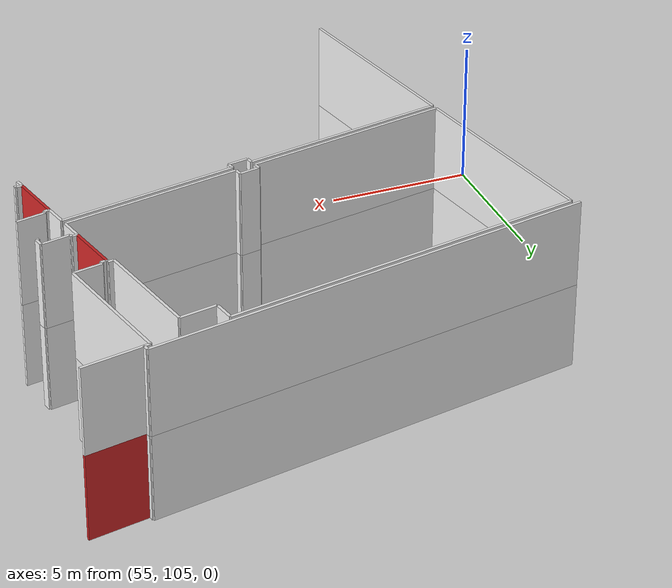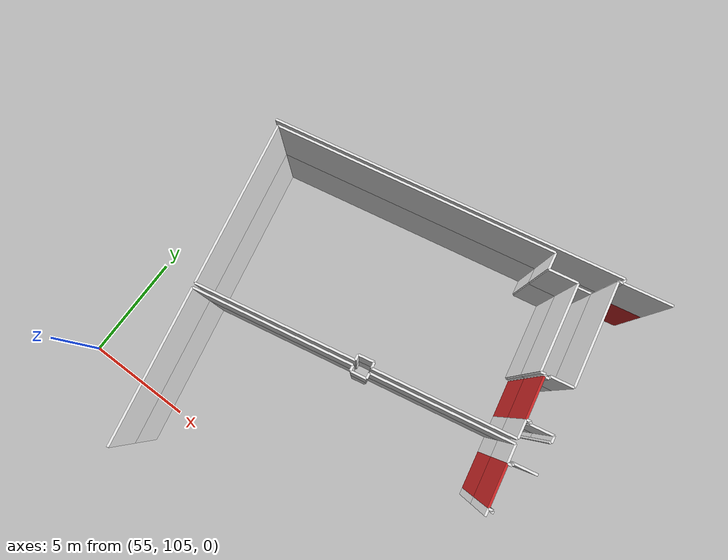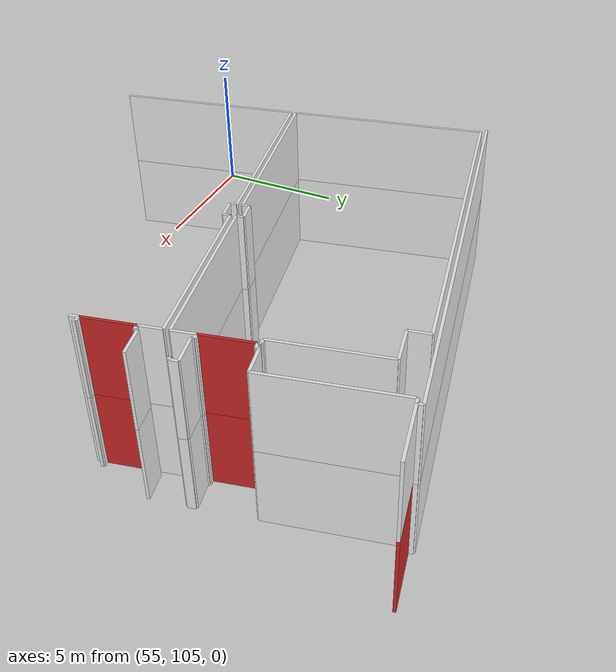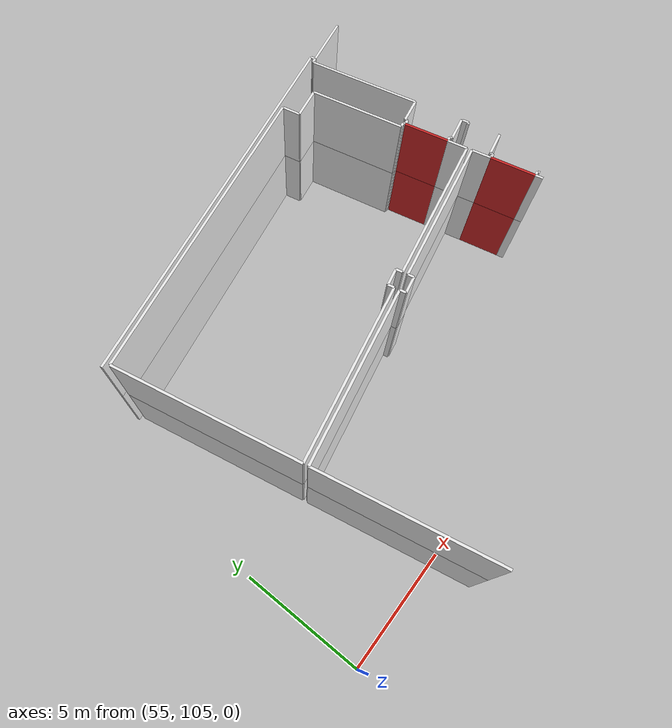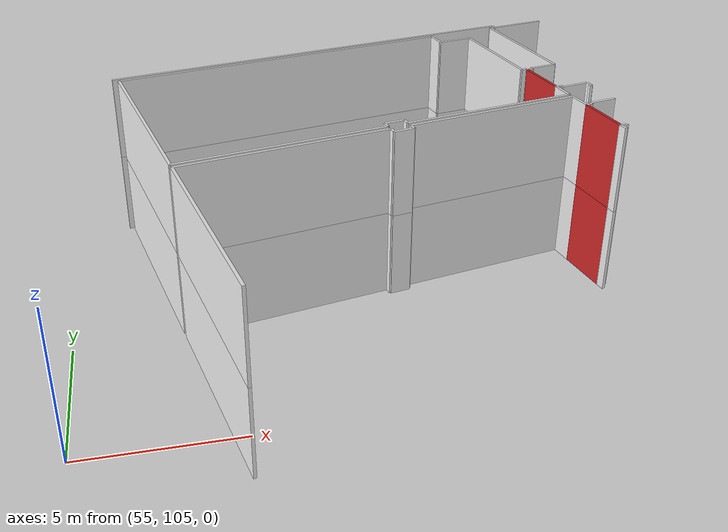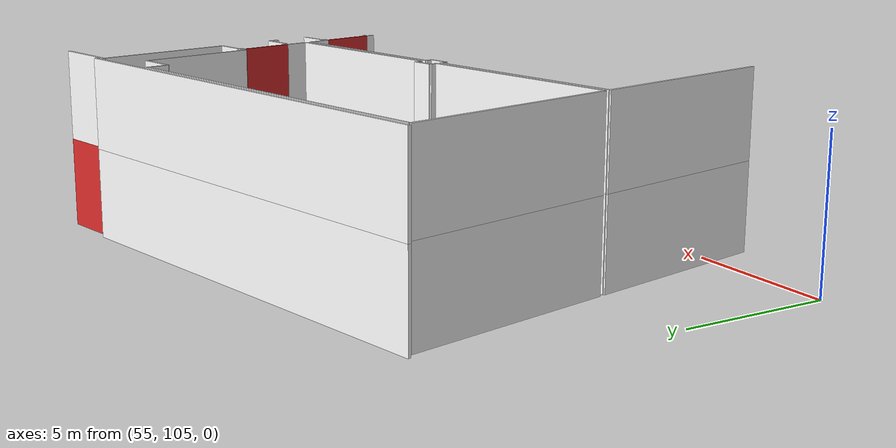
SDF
<sdf version="1.6">
 <world name="default">
  <model name="wall_71.7_114.6_1.5">
   <static>true</static>
   <pose>71.72999999998137 114.55000000004657 1.5 0 0 -1.3690339825092397</pose>
   <link name="link">
    <visual name="visual">
     <geometry><box><size>1.796440926065282 0.1 3</size></box></geometry>
     <material>
      <script><uri>file://media/materials/scripts/gazebo.material</uri><name>Gazebo/Red</name></script>
     </material>
    </visual>
    <collision name="collision"><geometry><box><size>1.796440926065282 0.1 3</size></box></geometry></collision>
   </link>
  </model>
  <model name="wall_72.4_111.0_1.5">
   <static>true</static>
   <pose>72.43499999999767 111.04000000003725 1.5 0 0 -1.3744936626731843</pose>
   <link name="link">
    <visual name="visual">
     <geometry><box><size>1.7944637079631676 0.1 3</size></box></geometry>
     <material>
      <script><uri>file://media/materials/scripts/gazebo.material</uri><name>Gazebo/Red</name></script>
     </material>
    </visual>
    <collision name="collision"><geometry><box><size>1.7944637079631676 0.1 3</size></box></geometry></collision>
   </link>
  </model>
  <model name="wall_73.0_120.5_1.5">
   <static>true</static>
   <pose>73.04000000000815 120.50499999988824 1.5 0 0 0.19646185337495456</pose>
   <link name="link">
    <visual name="visual">
     <geometry><box><size>2.100404722931416 0.1 3</size></box></geometry>
     <material>
      <script><uri>file://media/materials/scripts/gazebo.material</uri><name>Gazebo/Red</name></script>
     </material>
    </visual>
    <collision name="collision"><geometry><box><size>2.100404722931416 0.1 3</size></box></geometry></collision>
   </link>
  </model>
  <model name="wall_71.7_114.6_4.5">
   <static>true</static>
   <pose>71.72999999998137 114.55000000004657 4.5 0 0 -1.3690339825092397</pose>
   <link name="link">
    <visual name="visual">
     <geometry><box><size>1.796440926065282 0.1 3</size></box></geometry>
     <material>
      <script><uri>file://media/materials/scripts/gazebo.material</uri><name>Gazebo/Red</name></script>
     </material>
    </visual>
    <collision name="collision"><geometry><box><size>1.796440926065282 0.1 3</size></box></geometry></collision>
   </link>
  </model>
  <model name="wall_72.4_111.0_4.5">
   <static>true</static>
   <pose>72.43499999999767 111.04000000003725 4.5 0 0 -1.3744936626731843</pose>
   <link name="link">
    <visual name="visual">
     <geometry><box><size>1.7944637079631676 0.1 3</size></box></geometry>
     <material>
      <script><uri>file://media/materials/scripts/gazebo.material</uri><name>Gazebo/Red</name></script>
     </material>
    </visual>
    <collision name="collision"><geometry><box><size>1.7944637079631676 0.1 3</size></box></geometry></collision>
   </link>
  </model>
  <model name="wall_71.5_115.5_1.5">
   <static>true</static>
   <pose>71.5449999999837 115.47999999998137 1.5 0 0 1.6704649797471094</pose>
   <link name="link">
    <visual name="visual">
     <geometry><box><size>0.10049875584145537 0.1 3</size></box></geometry>
     <material>
      <script><uri>file://media/materials/scripts/gazebo.material</uri><name>Gazebo/White</name></script>
     </material>
    </visual>
    <collision name="collision"><geometry><box><size>0.10049875584145537 0.1 3</size></box></geometry></collision>
   </link>
  </model>
  <model name="wall_71.4_115.5_1.5">
   <static>true</static>
   <pose>71.44000000000233 115.51000000000931 1.5 0 0 -2.944197095754793</pose>
   <link name="link">
    <visual name="visual">
     <geometry><box><size>0.20396078041403173 0.1 3</size></box></geometry>
     <material>
      <script><uri>file://media/materials/scripts/gazebo.material</uri><name>Gazebo/White</name></script>
     </material>
    </visual>
    <collision name="collision"><geometry><box><size>0.20396078041403173 0.1 3</size></box></geometry></collision>
   </link>
  </model>
  <model name="wall_71.0_117.4_1.5">
   <static>true</static>
   <pose>70.96500000002561 117.37000000011176 1.5 0 0 1.7676803777493852</pose>
   <link name="link">
    <visual name="visual">
     <geometry><box><size>3.834070943308059 0.1 3</size></box></geometry>
     <material>
      <script><uri>file://media/materials/scripts/gazebo.material</uri><name>Gazebo/White</name></script>
     </material>
    </visual>
    <collision name="collision"><geometry><box><size>3.834070943308059 0.1 3</size></box></geometry></collision>
   </link>
  </model>
  <model name="wall_70.0_119.1_1.5">
   <static>true</static>
   <pose>69.96500000002561 119.12999999988824 1.5 0 0 -2.9519011013949563</pose>
   <link name="link">
    <visual name="visual">
     <geometry><box><size>1.2728314892817856 0.1 3</size></box></geometry>
     <material>
      <script><uri>file://media/materials/scripts/gazebo.material</uri><name>Gazebo/White</name></script>
     </material>
    </visual>
    <collision name="collision"><geometry><box><size>1.2728314892817856 0.1 3</size></box></geometry></collision>
   </link>
  </model>
  <model name="wall_69.3_119.4_1.5">
   <static>true</static>
   <pose>69.27000000001863 119.375 1.5 0 0 1.760276484581226</pose>
   <link name="link">
    <visual name="visual">
     <geometry><box><size>0.7433034378075905 0.1 3</size></box></geometry>
     <material>
      <script><uri>file://media/materials/scripts/gazebo.material</uri><name>Gazebo/White</name></script>
     </material>
    </visual>
    <collision name="collision"><geometry><box><size>0.7433034378075905 0.1 3</size></box></geometry></collision>
   </link>
  </model>
  <model name="wall_63.1_118.5_1.5">
   <static>true</static>
   <pose>63.14500000001863 118.54500000015832 1.5 0 0 -2.9467391918441352</pose>
   <link name="link">
    <visual name="visual">
     <geometry><box><size>12.343589429346915 0.1 3</size></box></geometry>
     <material>
      <script><uri>file://media/materials/scripts/gazebo.material</uri><name>Gazebo/White</name></script>
     </material>
    </visual>
    <collision name="collision"><geometry><box><size>12.343589429346915 0.1 3</size></box></geometry></collision>
   </link>
  </model>
  <model name="wall_57.8_113.8_1.5">
   <static>true</static>
   <pose>57.80000000001746 113.78500000014901 1.5 0 0 -1.3742100465085676</pose>
   <link name="link">
    <visual name="visual">
     <geometry><box><size>7.270027510151529 0.1 3</size></box></geometry>
     <material>
      <script><uri>file://media/materials/scripts/gazebo.material</uri><name>Gazebo/White</name></script>
     </material>
    </visual>
    <collision name="collision"><geometry><box><size>7.270027510151529 0.1 3</size></box></geometry></collision>
   </link>
  </model>
  <model name="wall_61.9_110.9_1.5">
   <static>true</static>
   <pose>61.945000000006985 110.9000000001397 1.5 0 0 0.1954353271142626</pose>
   <link name="link">
    <visual name="visual">
     <geometry><box><size>7.0033206409232305 0.1 3</size></box></geometry>
     <material>
      <script><uri>file://media/materials/scripts/gazebo.material</uri><name>Gazebo/White</name></script>
     </material>
    </visual>
    <collision name="collision"><geometry><box><size>7.0033206409232305 0.1 3</size></box></geometry></collision>
   </link>
  </model>
  <model name="wall_65.4_111.7_1.5">
   <static>true</static>
   <pose>65.35500000001048 111.69999999995343 1.5 0 0 1.7761917161396261</pose>
   <link name="link">
    <visual name="visual">
     <geometry><box><size>0.24515301320319682 0.1 3</size></box></geometry>
     <material>
      <script><uri>file://media/materials/scripts/gazebo.material</uri><name>Gazebo/White</name></script>
     </material>
    </visual>
    <collision name="collision"><geometry><box><size>0.24515301320319682 0.1 3</size></box></geometry></collision>
   </link>
  </model>
  <model name="wall_65.7_111.9_1.5">
   <static>true</static>
   <pose>65.6700000000128 111.88999999989755 1.5 0 0 0.20304521743943982</pose>
   <link name="link">
    <visual name="visual">
     <geometry><box><size>0.6942621983278424 0.1 3</size></box></geometry>
     <material>
      <script><uri>file://media/materials/scripts/gazebo.material</uri><name>Gazebo/White</name></script>
     </material>
    </visual>
    <collision name="collision"><geometry><box><size>0.6942621983278424 0.1 3</size></box></geometry></collision>
   </link>
  </model>
  <model name="wall_66.0_111.8_1.5">
   <static>true</static>
   <pose>66.03500000000349 111.83499999996275 1.5 0 0 -1.373400766989791</pose>
   <link name="link">
    <visual name="visual">
     <geometry><box><size>0.25495097567735614 0.1 3</size></box></geometry>
     <material>
      <script><uri>file://media/materials/scripts/gazebo.material</uri><name>Gazebo/White</name></script>
     </material>
    </visual>
    <collision name="collision"><geometry><box><size>0.25495097567735614 0.1 3</size></box></geometry></collision>
   </link>
  </model>
  <model name="wall_69.1_112.3_1.5">
   <static>true</static>
   <pose>69.05999999999767 112.30000000004657 1.5 0 0 0.19418838678074232</pose>
   <link name="link">
    <visual name="visual">
     <geometry><box><size>6.1149325425875 0.1 3</size></box></geometry>
     <material>
      <script><uri>file://media/materials/scripts/gazebo.material</uri><name>Gazebo/White</name></script>
     </material>
    </visual>
    <collision name="collision"><geometry><box><size>6.1149325425875 0.1 3</size></box></geometry></collision>
   </link>
  </model>
  <model name="wall_72.0_113.3_1.5">
   <static>true</static>
   <pose>71.98499999998603 113.28000000002794 1.5 0 0 1.760784614791112</pose>
   <link name="link">
    <visual name="visual">
     <geometry><box><size>0.7942921374956162 0.1 3</size></box></geometry>
     <material>
      <script><uri>file://media/materials/scripts/gazebo.material</uri><name>Gazebo/White</name></script>
     </material>
    </visual>
    <collision name="collision"><geometry><box><size>0.7942921374956162 0.1 3</size></box></geometry></collision>
   </link>
  </model>
  <model name="wall_72.2_112.3_1.5">
   <static>true</static>
   <pose>72.17999999999302 112.30499999993481 1.5 0 0 1.7756730438677673</pose>
   <link name="link">
    <visual name="visual">
     <geometry><box><size>0.786447709666139 0.1 3</size></box></geometry>
     <material>
      <script><uri>file://media/materials/scripts/gazebo.material</uri><name>Gazebo/White</name></script>
     </material>
    </visual>
    <collision name="collision"><geometry><box><size>0.786447709666139 0.1 3</size></box></geometry></collision>
   </link>
  </model>
  <model name="wall_69.1_112.1_1.5">
   <static>true</static>
   <pose>69.09999999997672 112.0999999998603 1.5 0 0 -2.947404266809051</pose>
   <link name="link">
    <visual name="visual">
     <geometry><box><size>6.1149325425875 0.1 3</size></box></geometry>
     <material>
      <script><uri>file://media/materials/scripts/gazebo.material</uri><name>Gazebo/White</name></script>
     </material>
    </visual>
    <collision name="collision"><geometry><box><size>6.1149325425875 0.1 3</size></box></geometry></collision>
   </link>
  </model>
  <model name="wall_66.1_111.4_1.5">
   <static>true</static>
   <pose>66.125 111.38999999989755 1.5 0 0 -1.3654009372177238</pose>
   <link name="link">
    <visual name="visual">
     <geometry><box><size>0.24515301321506852 0.1 3</size></box></geometry>
     <material>
      <script><uri>file://media/materials/scripts/gazebo.material</uri><name>Gazebo/White</name></script>
     </material>
    </visual>
    <collision name="collision"><geometry><box><size>0.24515301321506852 0.1 3</size></box></geometry></collision>
   </link>
  </model>
  <model name="wall_65.8_111.2_1.5">
   <static>true</static>
   <pose>65.80999999999767 111.2050000000745 1.5 0 0 -2.9526954728846198</pose>
   <link name="link">
    <visual name="visual">
     <geometry><box><size>0.6923149572561651 0.1 3</size></box></geometry>
     <material>
      <script><uri>file://media/materials/scripts/gazebo.material</uri><name>Gazebo/White</name></script>
     </material>
    </visual>
    <collision name="collision"><geometry><box><size>0.6923149572561651 0.1 3</size></box></geometry></collision>
   </link>
  </model>
  <model name="wall_65.4_111.3_1.5">
   <static>true</static>
   <pose>65.44499999997788 111.26000000000931 1.5 0 0 1.7761917161396261</pose>
   <link name="link">
    <visual name="visual">
     <geometry><box><size>0.24515301320319682 0.1 3</size></box></geometry>
     <material>
      <script><uri>file://media/materials/scripts/gazebo.material</uri><name>Gazebo/White</name></script>
     </material>
    </visual>
    <collision name="collision"><geometry><box><size>0.24515301320319682 0.1 3</size></box></geometry></collision>
   </link>
  </model>
  <model name="wall_62.0_110.7_1.5">
   <static>true</static>
   <pose>61.98499999998603 110.70499999984168 1.5 0 0 -2.9475584256050955</pose>
   <link name="link">
    <visual name="visual">
     <geometry><box><size>7.001385577168813 0.1 3</size></box></geometry>
     <material>
      <script><uri>file://media/materials/scripts/gazebo.material</uri><name>Gazebo/White</name></script>
     </material>
    </visual>
    <collision name="collision"><geometry><box><size>7.001385577168813 0.1 3</size></box></geometry></collision>
   </link>
  </model>
  <model name="wall_59.2_106.7_1.5">
   <static>true</static>
   <pose>59.20999999999185 106.70499999984168 1.5 0 0 -1.3748471066906804</pose>
   <link name="link">
    <visual name="visual">
     <geometry><box><size>6.779741882902312 0.1 3</size></box></geometry>
     <material>
      <script><uri>file://media/materials/scripts/gazebo.material</uri><name>Gazebo/White</name></script>
     </material>
    </visual>
    <collision name="collision"><geometry><box><size>6.779741882902312 0.1 3</size></box></geometry></collision>
   </link>
  </model>
  <model name="wall_72.6_110.0_1.5">
   <static>true</static>
   <pose>72.63999999998487 110.01000000000931 1.5 0 0 1.7681918864582145</pose>
   <link name="link">
    <visual name="visual">
     <geometry><box><size>0.30594117108908153 0.1 3</size></box></geometry>
     <material>
      <script><uri>file://media/materials/scripts/gazebo.material</uri><name>Gazebo/White</name></script>
     </material>
    </visual>
    <collision name="collision"><geometry><box><size>0.30594117108908153 0.1 3</size></box></geometry></collision>
   </link>
  </model>
  <model name="wall_72.8_110.1_1.5">
   <static>true</static>
   <pose>72.80999999999767 110.13999999989755 1.5 0 0 1.7681918866447774</pose>
   <link name="link">
    <visual name="visual">
     <geometry><box><size>0.10198039036683233 0.1 3</size></box></geometry>
     <material>
      <script><uri>file://media/materials/scripts/gazebo.material</uri><name>Gazebo/White</name></script>
     </material>
    </visual>
    <collision name="collision"><geometry><box><size>0.10198039036683233 0.1 3</size></box></geometry></collision>
   </link>
  </model>
  <model name="wall_72.7_110.2_1.5">
   <static>true</static>
   <pose>72.7049999999872 110.17500000004657 1.5 0 0 -2.9849907776618085</pose>
   <link name="link">
    <visual name="visual">
     <geometry><box><size>0.19235384058705793 0.1 3</size></box></geometry>
     <material>
      <script><uri>file://media/materials/scripts/gazebo.material</uri><name>Gazebo/White</name></script>
     </material>
    </visual>
    <collision name="collision"><geometry><box><size>0.19235384058705793 0.1 3</size></box></geometry></collision>
   </link>
  </model>
  <model name="wall_72.4_111.9_1.5">
   <static>true</static>
   <pose>72.35500000001048 111.93500000005588 1.5 0 0 0.15660187831921837</pose>
   <link name="link">
    <visual name="visual">
     <geometry><box><size>0.19235384065968367 0.1 3</size></box></geometry>
     <material>
      <script><uri>file://media/materials/scripts/gazebo.material</uri><name>Gazebo/White</name></script>
     </material>
    </visual>
    <collision name="collision"><geometry><box><size>0.19235384065968367 0.1 3</size></box></geometry></collision>
   </link>
  </model>
  <model name="wall_72.4_112.0_1.5">
   <static>true</static>
   <pose>72.44000000000233 112.0 1.5 0 0 1.7681918875402798</pose>
   <link name="link">
    <visual name="visual">
     <geometry><box><size>0.10198038991021388 0.1 3</size></box></geometry>
     <material>
      <script><uri>file://media/materials/scripts/gazebo.material</uri><name>Gazebo/White</name></script>
     </material>
    </visual>
    <collision name="collision"><geometry><box><size>0.10198038991021388 0.1 3</size></box></geometry></collision>
   </link>
  </model>
  <model name="wall_72.9_112.1_1.5">
   <static>true</static>
   <pose>72.9199999999837 112.14999999990687 1.5 0 0 0.2013171085608308</pose>
   <link name="link">
    <visual name="visual">
     <geometry><box><size>1.0001999800229942 0.1 3</size></box></geometry>
     <material>
      <script><uri>file://media/materials/scripts/gazebo.material</uri><name>Gazebo/White</name></script>
     </material>
    </visual>
    <collision name="collision"><geometry><box><size>1.0001999800229942 0.1 3</size></box></geometry></collision>
   </link>
  </model>
  <model name="wall_73.1_113.5_1.5">
   <static>true</static>
   <pose>73.10999999998603 113.51000000000931 1.5 0 0 0.1973955600737564</pose>
   <link name="link">
    <visual name="visual">
     <geometry><box><size>0.10198039025267772 0.1 3</size></box></geometry>
     <material>
      <script><uri>file://media/materials/scripts/gazebo.material</uri><name>Gazebo/White</name></script>
     </material>
    </visual>
    <collision name="collision"><geometry><box><size>0.10198039025267772 0.1 3</size></box></geometry></collision>
   </link>
  </model>
  <model name="wall_73.1_113.7_1.5">
   <static>true</static>
   <pose>73.12999999997555 113.66500000003725 1.5 0 0 1.7748143063542596</pose>
   <link name="link">
    <visual name="visual">
     <geometry><box><size>0.2961418579352255 0.1 3</size></box></geometry>
     <material>
      <script><uri>file://media/materials/scripts/gazebo.material</uri><name>Gazebo/White</name></script>
     </material>
    </visual>
    <collision name="collision"><geometry><box><size>0.2961418579352255 0.1 3</size></box></geometry></collision>
   </link>
  </model>
  <model name="wall_72.6_113.7_1.5">
   <static>true</static>
   <pose>72.60999999998603 113.70999999996275 1.5 0 0 -2.9402755450289626</pose>
   <link name="link">
    <visual name="visual">
     <geometry><box><size>1.0001999800229942 0.1 3</size></box></geometry>
     <material>
      <script><uri>file://media/materials/scripts/gazebo.material</uri><name>Gazebo/White</name></script>
     </material>
    </visual>
    <collision name="collision"><geometry><box><size>1.0001999800229942 0.1 3</size></box></geometry></collision>
   </link>
  </model>
  <model name="wall_72.1_113.7_1.5">
   <static>true</static>
   <pose>72.10999999998603 113.65999999991618 1.5 0 0 1.7681918866447774</pose>
   <link name="link">
    <visual name="visual">
     <geometry><box><size>0.10198039036683233 0.1 3</size></box></geometry>
     <material>
      <script><uri>file://media/materials/scripts/gazebo.material</uri><name>Gazebo/White</name></script>
     </material>
    </visual>
    <collision name="collision"><geometry><box><size>0.10198039036683233 0.1 3</size></box></geometry></collision>
   </link>
  </model>
  <model name="wall_72.0_113.7_1.5">
   <static>true</static>
   <pose>72.00499999997555 113.68999999994412 1.5 0 0 -2.9340964269693144</pose>
   <link name="link">
    <visual name="visual">
     <geometry><box><size>0.19416487839942884 0.1 3</size></box></geometry>
     <material>
      <script><uri>file://media/materials/scripts/gazebo.material</uri><name>Gazebo/White</name></script>
     </material>
    </visual>
    <collision name="collision"><geometry><box><size>0.19416487839942884 0.1 3</size></box></geometry></collision>
   </link>
  </model>
  <model name="wall_71.6_115.5_1.5">
   <static>true</static>
   <pose>71.64999999999418 115.45000000018626 1.5 0 0 0.19739556001778746</pose>
   <link name="link">
    <visual name="visual">
     <geometry><box><size>0.20396078056243275 0.1 3</size></box></geometry>
     <material>
      <script><uri>file://media/materials/scripts/gazebo.material</uri><name>Gazebo/White</name></script>
     </material>
    </visual>
    <collision name="collision"><geometry><box><size>0.20396078056243275 0.1 3</size></box></geometry></collision>
   </link>
  </model>
  <model name="wall_71.7_115.5_1.5">
   <static>true</static>
   <pose>71.73999999999069 115.52000000001863 1.5 0 0 1.7681918875402798</pose>
   <link name="link">
    <visual name="visual">
     <geometry><box><size>0.10198038991021388 0.1 3</size></box></geometry>
     <material>
      <script><uri>file://media/materials/scripts/gazebo.material</uri><name>Gazebo/White</name></script>
     </material>
    </visual>
    <collision name="collision"><geometry><box><size>0.10198038991021388 0.1 3</size></box></geometry></collision>
   </link>
  </model>
  <model name="wall_72.2_115.7_1.5">
   <static>true</static>
   <pose>72.22000000000116 115.66499999980442 1.5 0 0 0.19150171840711785</pose>
   <link name="link">
    <visual name="visual">
     <geometry><box><size>0.9982484660926583 0.1 3</size></box></geometry>
     <material>
      <script><uri>file://media/materials/scripts/gazebo.material</uri><name>Gazebo/White</name></script>
     </material>
    </visual>
    <collision name="collision"><geometry><box><size>0.9982484660926583 0.1 3</size></box></geometry></collision>
   </link>
  </model>
  <model name="wall_72.3_118.0_1.5">
   <static>true</static>
   <pose>72.26500000001397 117.98999999999069 1.5 0 0 1.7677606663024836</pose>
   <link name="link">
    <visual name="visual">
     <geometry><box><size>4.547933597123673 0.1 3</size></box></geometry>
     <material>
      <script><uri>file://media/materials/scripts/gazebo.material</uri><name>Gazebo/White</name></script>
     </material>
    </visual>
    <collision name="collision"><geometry><box><size>4.547933597123673 0.1 3</size></box></geometry></collision>
   </link>
  </model>
  <model name="wall_71.8_120.2_1.5">
   <static>true</static>
   <pose>71.81500000000233 120.23999999999069 1.5 0 0 1.8157749926609448</pose>
   <link name="link">
    <visual name="visual">
     <geometry><box><size>0.041231055842818214 0.1 3</size></box></geometry>
     <material>
      <script><uri>file://media/materials/scripts/gazebo.material</uri><name>Gazebo/White</name></script>
     </material>
    </visual>
    <collision name="collision">
     <geometry><box><size>0.041231055842818214 0.1 3</size></box></geometry>
    </collision>
   </link>
  </model>
  <model name="wall_71.9_120.3_1.5">
   <static>true</static>
   <pose>71.91000000000349 120.27999999979511 1.5 0 0 0.19739556001778746</pose>
   <link name="link">
    <visual name="visual">
     <geometry><box><size>0.20396078056243275 0.1 3</size></box></geometry>
     <material>
      <script><uri>file://media/materials/scripts/gazebo.material</uri><name>Gazebo/White</name></script>
     </material>
    </visual>
    <collision name="collision"><geometry><box><size>0.20396078056243275 0.1 3</size></box></geometry></collision>
   </link>
  </model>
  <model name="wall_72.0_120.4_1.5">
   <static>true</static>
   <pose>71.99499999999534 120.39500000001863 1.5 0 0 1.7273982035881303</pose>
   <link name="link">
    <visual name="visual">
     <geometry><box><size>0.1923538410258384 0.1 3</size></box></geometry>
     <material>
      <script><uri>file://media/materials/scripts/gazebo.material</uri><name>Gazebo/White</name></script>
     </material>
    </visual>
    <collision name="collision"><geometry><box><size>0.1923538410258384 0.1 3</size></box></geometry></collision>
   </link>
  </model>
  <model name="wall_64.4_119.0_1.5">
   <static>true</static>
   <pose>64.41499999997905 119.0 1.5 0 0 -2.947122177573041</pose>
   <link name="link">
    <visual name="visual">
     <geometry><box><size>15.42067767650972 0.1 3</size></box></geometry>
     <material>
      <script><uri>file://media/materials/scripts/gazebo.material</uri><name>Gazebo/White</name></script>
     </material>
    </visual>
    <collision name="collision"><geometry><box><size>15.42067767650972 0.1 3</size></box></geometry></collision>
   </link>
  </model>
  <model name="wall_64.6_118.8_1.5">
   <static>true</static>
   <pose>64.55000000001746 118.82499999995343 1.5 0 0 0.19520342923642736</pose>
   <link name="link">
    <visual name="visual">
     <geometry><box><size>15.208842822445934 0.1 3</size></box></geometry>
     <material>
      <script><uri>file://media/materials/scripts/gazebo.material</uri><name>Gazebo/White</name></script>
     </material>
    </visual>
    <collision name="collision"><geometry><box><size>15.208842822445934 0.1 3</size></box></geometry></collision>
   </link>
  </model>
  <model name="wall_71.5_115.5_4.5">
   <static>true</static>
   <pose>71.5449999999837 115.47999999998137 4.5 0 0 1.6704649797471094</pose>
   <link name="link">
    <visual name="visual">
     <geometry><box><size>0.10049875584145537 0.1 3</size></box></geometry>
     <material>
      <script><uri>file://media/materials/scripts/gazebo.material</uri><name>Gazebo/White</name></script>
     </material>
    </visual>
    <collision name="collision"><geometry><box><size>0.10049875584145537 0.1 3</size></box></geometry></collision>
   </link>
  </model>
  <model name="wall_71.4_115.5_4.5">
   <static>true</static>
   <pose>71.44000000000233 115.51000000000931 4.5 0 0 -2.944197095754793</pose>
   <link name="link">
    <visual name="visual">
     <geometry><box><size>0.20396078041403173 0.1 3</size></box></geometry>
     <material>
      <script><uri>file://media/materials/scripts/gazebo.material</uri><name>Gazebo/White</name></script>
     </material>
    </visual>
    <collision name="collision"><geometry><box><size>0.20396078041403173 0.1 3</size></box></geometry></collision>
   </link>
  </model>
  <model name="wall_71.0_117.4_4.5">
   <static>true</static>
   <pose>70.96500000002561 117.37000000011176 4.5 0 0 1.7676803777493852</pose>
   <link name="link">
    <visual name="visual">
     <geometry><box><size>3.834070943308059 0.1 3</size></box></geometry>
     <material>
      <script><uri>file://media/materials/scripts/gazebo.material</uri><name>Gazebo/White</name></script>
     </material>
    </visual>
    <collision name="collision"><geometry><box><size>3.834070943308059 0.1 3</size></box></geometry></collision>
   </link>
  </model>
  <model name="wall_70.0_119.1_4.5">
   <static>true</static>
   <pose>69.96500000002561 119.12999999988824 4.5 0 0 -2.9519011013949563</pose>
   <link name="link">
    <visual name="visual">
     <geometry><box><size>1.2728314892817856 0.1 3</size></box></geometry>
     <material>
      <script><uri>file://media/materials/scripts/gazebo.material</uri><name>Gazebo/White</name></script>
     </material>
    </visual>
    <collision name="collision"><geometry><box><size>1.2728314892817856 0.1 3</size></box></geometry></collision>
   </link>
  </model>
  <model name="wall_69.3_119.4_4.5">
   <static>true</static>
   <pose>69.27000000001863 119.375 4.5 0 0 1.760276484581226</pose>
   <link name="link">
    <visual name="visual">
     <geometry><box><size>0.7433034378075905 0.1 3</size></box></geometry>
     <material>
      <script><uri>file://media/materials/scripts/gazebo.material</uri><name>Gazebo/White</name></script>
     </material>
    </visual>
    <collision name="collision"><geometry><box><size>0.7433034378075905 0.1 3</size></box></geometry></collision>
   </link>
  </model>
  <model name="wall_63.1_118.5_4.5">
   <static>true</static>
   <pose>63.14500000001863 118.54500000015832 4.5 0 0 -2.9467391918441352</pose>
   <link name="link">
    <visual name="visual">
     <geometry><box><size>12.343589429346915 0.1 3</size></box></geometry>
     <material>
      <script><uri>file://media/materials/scripts/gazebo.material</uri><name>Gazebo/White</name></script>
     </material>
    </visual>
    <collision name="collision"><geometry><box><size>12.343589429346915 0.1 3</size></box></geometry></collision>
   </link>
  </model>
  <model name="wall_57.8_113.8_4.5">
   <static>true</static>
   <pose>57.80000000001746 113.78500000014901 4.5 0 0 -1.3742100465085676</pose>
   <link name="link">
    <visual name="visual">
     <geometry><box><size>7.270027510151529 0.1 3</size></box></geometry>
     <material>
      <script><uri>file://media/materials/scripts/gazebo.material</uri><name>Gazebo/White</name></script>
     </material>
    </visual>
    <collision name="collision"><geometry><box><size>7.270027510151529 0.1 3</size></box></geometry></collision>
   </link>
  </model>
  <model name="wall_61.9_110.9_4.5">
   <static>true</static>
   <pose>61.945000000006985 110.9000000001397 4.5 0 0 0.1954353271142626</pose>
   <link name="link">
    <visual name="visual">
     <geometry><box><size>7.0033206409232305 0.1 3</size></box></geometry>
     <material>
      <script><uri>file://media/materials/scripts/gazebo.material</uri><name>Gazebo/White</name></script>
     </material>
    </visual>
    <collision name="collision"><geometry><box><size>7.0033206409232305 0.1 3</size></box></geometry></collision>
   </link>
  </model>
  <model name="wall_65.4_111.7_4.5">
   <static>true</static>
   <pose>65.35500000001048 111.69999999995343 4.5 0 0 1.7761917161396261</pose>
   <link name="link">
    <visual name="visual">
     <geometry><box><size>0.24515301320319682 0.1 3</size></box></geometry>
     <material>
      <script><uri>file://media/materials/scripts/gazebo.material</uri><name>Gazebo/White</name></script>
     </material>
    </visual>
    <collision name="collision"><geometry><box><size>0.24515301320319682 0.1 3</size></box></geometry></collision>
   </link>
  </model>
  <model name="wall_65.7_111.9_4.5">
   <static>true</static>
   <pose>65.6700000000128 111.88999999989755 4.5 0 0 0.20304521743943982</pose>
   <link name="link">
    <visual name="visual">
     <geometry><box><size>0.6942621983278424 0.1 3</size></box></geometry>
     <material>
      <script><uri>file://media/materials/scripts/gazebo.material</uri><name>Gazebo/White</name></script>
     </material>
    </visual>
    <collision name="collision"><geometry><box><size>0.6942621983278424 0.1 3</size></box></geometry></collision>
   </link>
  </model>
  <model name="wall_66.0_111.8_4.5">
   <static>true</static>
   <pose>66.03500000000349 111.83499999996275 4.5 0 0 -1.373400766989791</pose>
   <link name="link">
    <visual name="visual">
     <geometry><box><size>0.25495097567735614 0.1 3</size></box></geometry>
     <material>
      <script><uri>file://media/materials/scripts/gazebo.material</uri><name>Gazebo/White</name></script>
     </material>
    </visual>
    <collision name="collision"><geometry><box><size>0.25495097567735614 0.1 3</size></box></geometry></collision>
   </link>
  </model>
  <model name="wall_69.1_112.3_4.5">
   <static>true</static>
   <pose>69.05999999999767 112.30000000004657 4.5 0 0 0.19418838678074232</pose>
   <link name="link">
    <visual name="visual">
     <geometry><box><size>6.1149325425875 0.1 3</size></box></geometry>
     <material>
      <script><uri>file://media/materials/scripts/gazebo.material</uri><name>Gazebo/White</name></script>
     </material>
    </visual>
    <collision name="collision"><geometry><box><size>6.1149325425875 0.1 3</size></box></geometry></collision>
   </link>
  </model>
  <model name="wall_72.0_113.3_4.5">
   <static>true</static>
   <pose>71.98499999998603 113.28000000002794 4.5 0 0 1.760784614791112</pose>
   <link name="link">
    <visual name="visual">
     <geometry><box><size>0.7942921374956162 0.1 3</size></box></geometry>
     <material>
      <script><uri>file://media/materials/scripts/gazebo.material</uri><name>Gazebo/White</name></script>
     </material>
    </visual>
    <collision name="collision"><geometry><box><size>0.7942921374956162 0.1 3</size></box></geometry></collision>
   </link>
  </model>
  <model name="wall_72.2_112.3_4.5">
   <static>true</static>
   <pose>72.17999999999302 112.30499999993481 4.5 0 0 1.7756730438677673</pose>
   <link name="link">
    <visual name="visual">
     <geometry><box><size>0.786447709666139 0.1 3</size></box></geometry>
     <material>
      <script><uri>file://media/materials/scripts/gazebo.material</uri><name>Gazebo/White</name></script>
     </material>
    </visual>
    <collision name="collision"><geometry><box><size>0.786447709666139 0.1 3</size></box></geometry></collision>
   </link>
  </model>
  <model name="wall_69.1_112.1_4.5">
   <static>true</static>
   <pose>69.09999999997672 112.0999999998603 4.5 0 0 -2.947404266809051</pose>
   <link name="link">
    <visual name="visual">
     <geometry><box><size>6.1149325425875 0.1 3</size></box></geometry>
     <material>
      <script><uri>file://media/materials/scripts/gazebo.material</uri><name>Gazebo/White</name></script>
     </material>
    </visual>
    <collision name="collision"><geometry><box><size>6.1149325425875 0.1 3</size></box></geometry></collision>
   </link>
  </model>
  <model name="wall_66.1_111.4_4.5">
   <static>true</static>
   <pose>66.125 111.38999999989755 4.5 0 0 -1.3654009372177238</pose>
   <link name="link">
    <visual name="visual">
     <geometry><box><size>0.24515301321506852 0.1 3</size></box></geometry>
     <material>
      <script><uri>file://media/materials/scripts/gazebo.material</uri><name>Gazebo/White</name></script>
     </material>
    </visual>
    <collision name="collision"><geometry><box><size>0.24515301321506852 0.1 3</size></box></geometry></collision>
   </link>
  </model>
  <model name="wall_65.8_111.2_4.5">
   <static>true</static>
   <pose>65.80999999999767 111.2050000000745 4.5 0 0 -2.9526954728846198</pose>
   <link name="link">
    <visual name="visual">
     <geometry><box><size>0.6923149572561651 0.1 3</size></box></geometry>
     <material>
      <script><uri>file://media/materials/scripts/gazebo.material</uri><name>Gazebo/White</name></script>
     </material>
    </visual>
    <collision name="collision"><geometry><box><size>0.6923149572561651 0.1 3</size></box></geometry></collision>
   </link>
  </model>
  <model name="wall_65.4_111.3_4.5">
   <static>true</static>
   <pose>65.44499999997788 111.26000000000931 4.5 0 0 1.7761917161396261</pose>
   <link name="link">
    <visual name="visual">
     <geometry><box><size>0.24515301320319682 0.1 3</size></box></geometry>
     <material>
      <script><uri>file://media/materials/scripts/gazebo.material</uri><name>Gazebo/White</name></script>
     </material>
    </visual>
    <collision name="collision"><geometry><box><size>0.24515301320319682 0.1 3</size></box></geometry></collision>
   </link>
  </model>
  <model name="wall_62.0_110.7_4.5">
   <static>true</static>
   <pose>61.98499999998603 110.70499999984168 4.5 0 0 -2.9475584256050955</pose>
   <link name="link">
    <visual name="visual">
     <geometry><box><size>7.001385577168813 0.1 3</size></box></geometry>
     <material>
      <script><uri>file://media/materials/scripts/gazebo.material</uri><name>Gazebo/White</name></script>
     </material>
    </visual>
    <collision name="collision"><geometry><box><size>7.001385577168813 0.1 3</size></box></geometry></collision>
   </link>
  </model>
  <model name="wall_59.2_106.7_4.5">
   <static>true</static>
   <pose>59.20999999999185 106.70499999984168 4.5 0 0 -1.3748471066906804</pose>
   <link name="link">
    <visual name="visual">
     <geometry><box><size>6.779741882902312 0.1 3</size></box></geometry>
     <material>
      <script><uri>file://media/materials/scripts/gazebo.material</uri><name>Gazebo/White</name></script>
     </material>
    </visual>
    <collision name="collision"><geometry><box><size>6.779741882902312 0.1 3</size></box></geometry></collision>
   </link>
  </model>
  <model name="wall_72.6_110.0_4.5">
   <static>true</static>
   <pose>72.63999999998487 110.01000000000931 4.5 0 0 1.7681918864582145</pose>
   <link name="link">
    <visual name="visual">
     <geometry><box><size>0.30594117108908153 0.1 3</size></box></geometry>
     <material>
      <script><uri>file://media/materials/scripts/gazebo.material</uri><name>Gazebo/White</name></script>
     </material>
    </visual>
    <collision name="collision"><geometry><box><size>0.30594117108908153 0.1 3</size></box></geometry></collision>
   </link>
  </model>
  <model name="wall_72.8_110.1_4.5">
   <static>true</static>
   <pose>72.80999999999767 110.13999999989755 4.5 0 0 1.7681918866447774</pose>
   <link name="link">
    <visual name="visual">
     <geometry><box><size>0.10198039036683233 0.1 3</size></box></geometry>
     <material>
      <script><uri>file://media/materials/scripts/gazebo.material</uri><name>Gazebo/White</name></script>
     </material>
    </visual>
    <collision name="collision"><geometry><box><size>0.10198039036683233 0.1 3</size></box></geometry></collision>
   </link>
  </model>
  <model name="wall_72.7_110.2_4.5">
   <static>true</static>
   <pose>72.7049999999872 110.17500000004657 4.5 0 0 -2.9849907776618085</pose>
   <link name="link">
    <visual name="visual">
     <geometry><box><size>0.19235384058705793 0.1 3</size></box></geometry>
     <material>
      <script><uri>file://media/materials/scripts/gazebo.material</uri><name>Gazebo/White</name></script>
     </material>
    </visual>
    <collision name="collision"><geometry><box><size>0.19235384058705793 0.1 3</size></box></geometry></collision>
   </link>
  </model>
  <model name="wall_72.4_111.9_4.5">
   <static>true</static>
   <pose>72.35500000001048 111.93500000005588 4.5 0 0 0.15660187831921837</pose>
   <link name="link">
    <visual name="visual">
     <geometry><box><size>0.19235384065968367 0.1 3</size></box></geometry>
     <material>
      <script><uri>file://media/materials/scripts/gazebo.material</uri><name>Gazebo/White</name></script>
     </material>
    </visual>
    <collision name="collision"><geometry><box><size>0.19235384065968367 0.1 3</size></box></geometry></collision>
   </link>
  </model>
  <model name="wall_72.4_112.0_4.5">
   <static>true</static>
   <pose>72.44000000000233 112.0 4.5 0 0 1.7681918875402798</pose>
   <link name="link">
    <visual name="visual">
     <geometry><box><size>0.10198038991021388 0.1 3</size></box></geometry>
     <material>
      <script><uri>file://media/materials/scripts/gazebo.material</uri><name>Gazebo/White</name></script>
     </material>
    </visual>
    <collision name="collision"><geometry><box><size>0.10198038991021388 0.1 3</size></box></geometry></collision>
   </link>
  </model>
  <model name="wall_72.9_112.1_4.5">
   <static>true</static>
   <pose>72.9199999999837 112.14999999990687 4.5 0 0 0.2013171085608308</pose>
   <link name="link">
    <visual name="visual">
     <geometry><box><size>1.0001999800229942 0.1 3</size></box></geometry>
     <material>
      <script><uri>file://media/materials/scripts/gazebo.material</uri><name>Gazebo/White</name></script>
     </material>
    </visual>
    <collision name="collision"><geometry><box><size>1.0001999800229942 0.1 3</size></box></geometry></collision>
   </link>
  </model>
  <model name="wall_73.1_113.5_4.5">
   <static>true</static>
   <pose>73.10999999998603 113.51000000000931 4.5 0 0 0.1973955600737564</pose>
   <link name="link">
    <visual name="visual">
     <geometry><box><size>0.10198039025267772 0.1 3</size></box></geometry>
     <material>
      <script><uri>file://media/materials/scripts/gazebo.material</uri><name>Gazebo/White</name></script>
     </material>
    </visual>
    <collision name="collision"><geometry><box><size>0.10198039025267772 0.1 3</size></box></geometry></collision>
   </link>
  </model>
  <model name="wall_73.1_113.7_4.5">
   <static>true</static>
   <pose>73.12999999997555 113.66500000003725 4.5 0 0 1.7748143063542596</pose>
   <link name="link">
    <visual name="visual">
     <geometry><box><size>0.2961418579352255 0.1 3</size></box></geometry>
     <material>
      <script><uri>file://media/materials/scripts/gazebo.material</uri><name>Gazebo/White</name></script>
     </material>
    </visual>
    <collision name="collision"><geometry><box><size>0.2961418579352255 0.1 3</size></box></geometry></collision>
   </link>
  </model>
  <model name="wall_72.6_113.7_4.5">
   <static>true</static>
   <pose>72.60999999998603 113.70999999996275 4.5 0 0 -2.9402755450289626</pose>
   <link name="link">
    <visual name="visual">
     <geometry><box><size>1.0001999800229942 0.1 3</size></box></geometry>
     <material>
      <script><uri>file://media/materials/scripts/gazebo.material</uri><name>Gazebo/White</name></script>
     </material>
    </visual>
    <collision name="collision"><geometry><box><size>1.0001999800229942 0.1 3</size></box></geometry></collision>
   </link>
  </model>
  <model name="wall_72.1_113.7_4.5">
   <static>true</static>
   <pose>72.10999999998603 113.65999999991618 4.5 0 0 1.7681918866447774</pose>
   <link name="link">
    <visual name="visual">
     <geometry><box><size>0.10198039036683233 0.1 3</size></box></geometry>
     <material>
      <script><uri>file://media/materials/scripts/gazebo.material</uri><name>Gazebo/White</name></script>
     </material>
    </visual>
    <collision name="collision"><geometry><box><size>0.10198039036683233 0.1 3</size></box></geometry></collision>
   </link>
  </model>
  <model name="wall_72.0_113.7_4.5">
   <static>true</static>
   <pose>72.00499999997555 113.68999999994412 4.5 0 0 -2.9340964269693144</pose>
   <link name="link">
    <visual name="visual">
     <geometry><box><size>0.19416487839942884 0.1 3</size></box></geometry>
     <material>
      <script><uri>file://media/materials/scripts/gazebo.material</uri><name>Gazebo/White</name></script>
     </material>
    </visual>
    <collision name="collision"><geometry><box><size>0.19416487839942884 0.1 3</size></box></geometry></collision>
   </link>
  </model>
  <model name="wall_71.6_115.5_4.5">
   <static>true</static>
   <pose>71.64999999999418 115.45000000018626 4.5 0 0 0.19739556001778746</pose>
   <link name="link">
    <visual name="visual">
     <geometry><box><size>0.20396078056243275 0.1 3</size></box></geometry>
     <material>
      <script><uri>file://media/materials/scripts/gazebo.material</uri><name>Gazebo/White</name></script>
     </material>
    </visual>
    <collision name="collision"><geometry><box><size>0.20396078056243275 0.1 3</size></box></geometry></collision>
   </link>
  </model>
  <model name="wall_71.7_115.5_4.5">
   <static>true</static>
   <pose>71.73999999999069 115.52000000001863 4.5 0 0 1.7681918875402798</pose>
   <link name="link">
    <visual name="visual">
     <geometry><box><size>0.10198038991021388 0.1 3</size></box></geometry>
     <material>
      <script><uri>file://media/materials/scripts/gazebo.material</uri><name>Gazebo/White</name></script>
     </material>
    </visual>
    <collision name="collision"><geometry><box><size>0.10198038991021388 0.1 3</size></box></geometry></collision>
   </link>
  </model>
  <model name="wall_72.2_115.7_4.5">
   <static>true</static>
   <pose>72.22000000000116 115.66499999980442 4.5 0 0 0.19150171840711785</pose>
   <link name="link">
    <visual name="visual">
     <geometry><box><size>0.9982484660926583 0.1 3</size></box></geometry>
     <material>
      <script><uri>file://media/materials/scripts/gazebo.material</uri><name>Gazebo/White</name></script>
     </material>
    </visual>
    <collision name="collision"><geometry><box><size>0.9982484660926583 0.1 3</size></box></geometry></collision>
   </link>
  </model>
  <model name="wall_72.3_118.0_4.5">
   <static>true</static>
   <pose>72.26500000001397 117.98999999999069 4.5 0 0 1.7677606663024836</pose>
   <link name="link">
    <visual name="visual">
     <geometry><box><size>4.547933597123673 0.1 3</size></box></geometry>
     <material>
      <script><uri>file://media/materials/scripts/gazebo.material</uri><name>Gazebo/White</name></script>
     </material>
    </visual>
    <collision name="collision"><geometry><box><size>4.547933597123673 0.1 3</size></box></geometry></collision>
   </link>
  </model>
  <model name="wall_71.8_120.2_4.5">
   <static>true</static>
   <pose>71.81500000000233 120.23999999999069 4.5 0 0 1.8157749926609448</pose>
   <link name="link">
    <visual name="visual">
     <geometry><box><size>0.041231055842818214 0.1 3</size></box></geometry>
     <material>
      <script><uri>file://media/materials/scripts/gazebo.material</uri><name>Gazebo/White</name></script>
     </material>
    </visual>
    <collision name="collision">
     <geometry><box><size>0.041231055842818214 0.1 3</size></box></geometry>
    </collision>
   </link>
  </model>
  <model name="wall_71.9_120.3_4.5">
   <static>true</static>
   <pose>71.91000000000349 120.27999999979511 4.5 0 0 0.19739556001778746</pose>
   <link name="link">
    <visual name="visual">
     <geometry><box><size>0.20396078056243275 0.1 3</size></box></geometry>
     <material>
      <script><uri>file://media/materials/scripts/gazebo.material</uri><name>Gazebo/White</name></script>
     </material>
    </visual>
    <collision name="collision"><geometry><box><size>0.20396078056243275 0.1 3</size></box></geometry></collision>
   </link>
  </model>
  <model name="wall_73.0_120.5_4.5">
   <static>true</static>
   <pose>73.04000000000815 120.50499999988824 4.5 0 0 0.19646185337495456</pose>
   <link name="link">
    <visual name="visual">
     <geometry><box><size>2.100404722931416 0.1 3</size></box></geometry>
     <material>
      <script><uri>file://media/materials/scripts/gazebo.material</uri><name>Gazebo/White</name></script>
     </material>
    </visual>
    <collision name="collision"><geometry><box><size>2.100404722931416 0.1 3</size></box></geometry></collision>
   </link>
  </model>
  <model name="wall_72.0_120.4_4.5">
   <static>true</static>
   <pose>71.99499999999534 120.39500000001863 4.5 0 0 1.7273982035881303</pose>
   <link name="link">
    <visual name="visual">
     <geometry><box><size>0.1923538410258384 0.1 3</size></box></geometry>
     <material>
      <script><uri>file://media/materials/scripts/gazebo.material</uri><name>Gazebo/White</name></script>
     </material>
    </visual>
    <collision name="collision"><geometry><box><size>0.1923538410258384 0.1 3</size></box></geometry></collision>
   </link>
  </model>
  <model name="wall_64.4_119.0_4.5">
   <static>true</static>
   <pose>64.41499999997905 119.0 4.5 0 0 -2.947122177573041</pose>
   <link name="link">
    <visual name="visual">
     <geometry><box><size>15.42067767650972 0.1 3</size></box></geometry>
     <material>
      <script><uri>file://media/materials/scripts/gazebo.material</uri><name>Gazebo/White</name></script>
     </material>
    </visual>
    <collision name="collision"><geometry><box><size>15.42067767650972 0.1 3</size></box></geometry></collision>
   </link>
  </model>
 </world>
</sdf>
